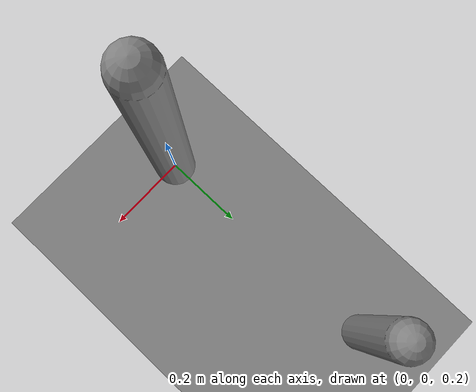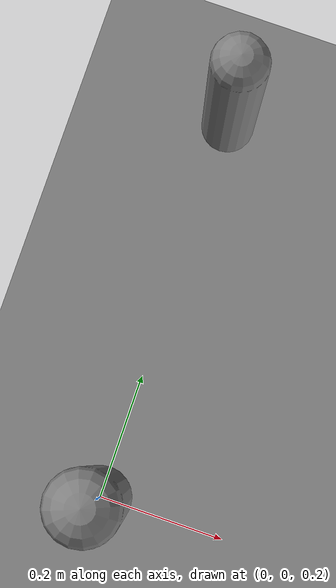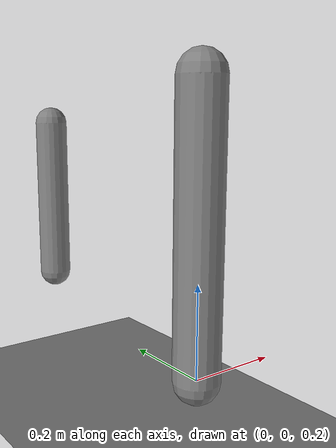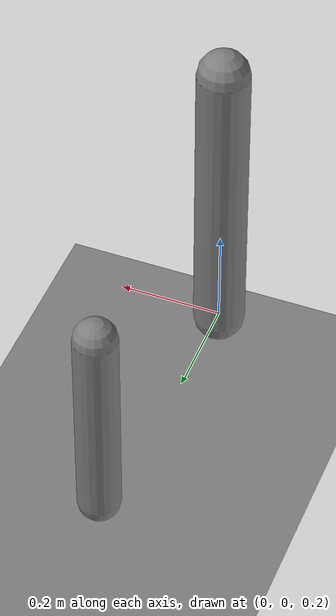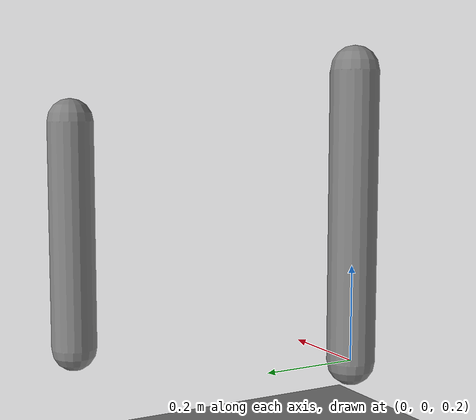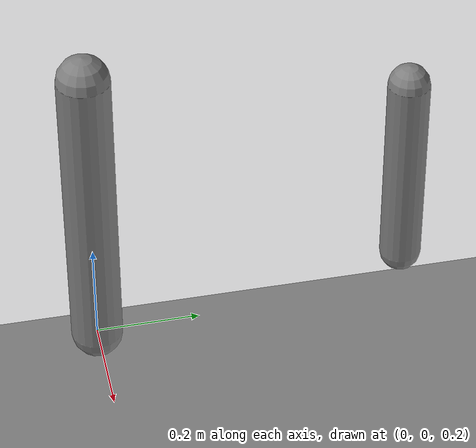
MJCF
<mujoco model="mixed_noslip">
            <option gravity="0 0 -9.81" solver="PGS" cone="elliptic"
                    iterations="100" noslip_iterations="20" noslip_tolerance="1e-8"/>
            <worldbody>
                <body name="arm" pos="0 0 0.5">
                    <joint type="hinge" axis="0 1 0" frictionloss="0.5"/>
                    <geom type="capsule" size="0.05 0.3" mass="1.0" friction="0.5 0.5 0.005"/>
                    <body name="forearm" pos="0 0.6 0">
                        <joint type="hinge" axis="0 1 0" frictionloss="0.2"/>
                        <geom type="capsule" size="0.04 0.2" mass="0.5" friction="0.5 0.5 0.005"/>
                    </body>
                </body>
                <geom type="plane" size="5 5 0.1"/>
            </worldbody>
        </mujoco>
